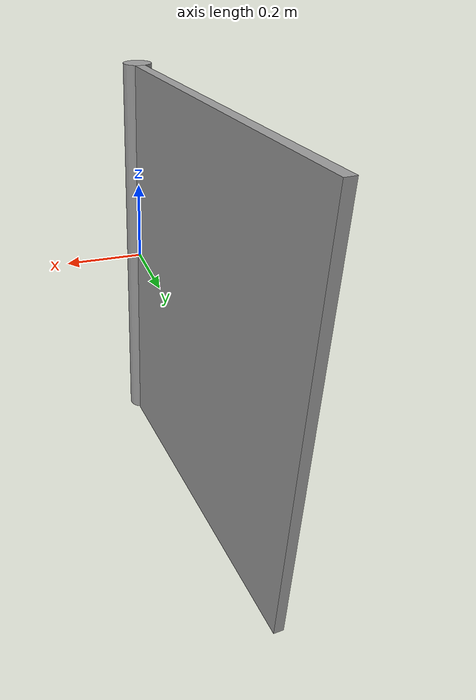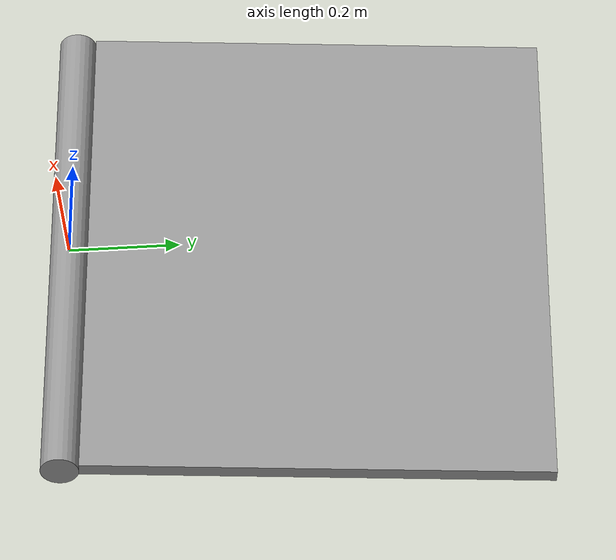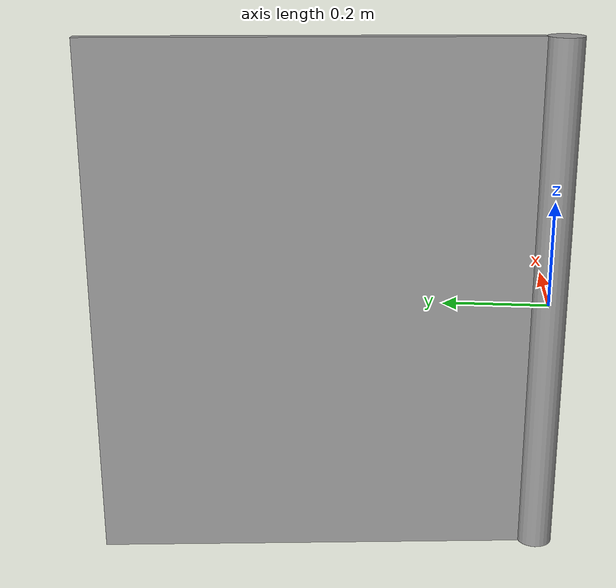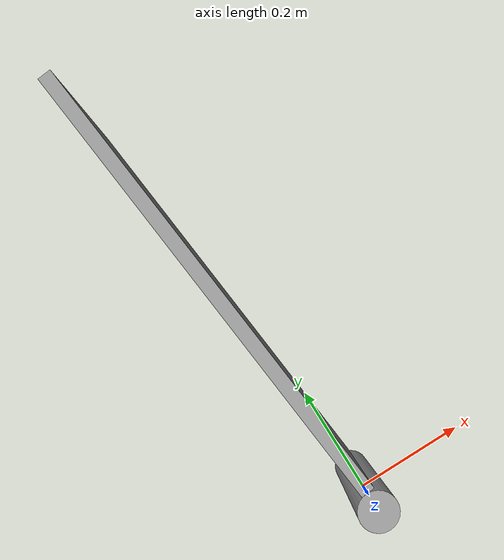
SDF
<?xml version='1.0'?>
<sdf version='1.6'>
  <model name='unit_cylinder'>
    <link name='link'>
      <inertial>
        <mass>0.00457498</mass>
        <inertia>
          <ixx>0.000382557</ixx>
          <ixy>0</ixy>
          <ixz>0</ixz>
          <iyy>0.000382557</iyy>
          <iyz>0</iyz>
          <izz>2.61629e-06</izz>
        </inertia>
        <pose frame=''>0 0 0 0 -0 0</pose>
      </inertial>
      <self_collide>0</self_collide>
      <enable_wind>0</enable_wind>
      <kinematic>0</kinematic>
      <pose frame=''>0 0 0 0 -0 0</pose>
      <visual name='visual'>
        <geometry>
          <cylinder>
            <radius>0.0338192</radius>
            <length>1</length>
          </cylinder>
        </geometry>
        <material>
          <script>
            <name>Gazebo/Grey</name>
            <uri>file://media/materials/scripts/gazebo.material</uri>
          </script>
          <emissive>0 0 0 1</emissive>
        </material>
        <pose frame=''>0 0 0 0 -0 0</pose>
        <transparency>0</transparency>
        <cast_shadows>1</cast_shadows>
      </visual>
      <collision name='collision'>
        <laser_retro>0</laser_retro>
        <max_contacts>10</max_contacts>
        <pose frame=''>0 0 0 0 -0 0</pose>
        <geometry>
          <cylinder>
            <radius>0.033819</radius>
            <length>1</length>
          </cylinder>
        </geometry>
        <surface>
          <friction>
            <ode>
              <mu>1</mu>
              <mu2>1</mu2>
              <fdir1>0 0 0</fdir1>
              <slip1>0</slip1>
              <slip2>0</slip2>
            </ode>
            <torsional>
              <coefficient>1</coefficient>
              <patch_radius>0</patch_radius>
              <surface_radius>0</surface_radius>
              <use_patch_radius>1</use_patch_radius>
              <ode>
                <slip>0</slip>
              </ode>
            </torsional>
          </friction>
          <bounce>
            <restitution_coefficient>0</restitution_coefficient>
            <threshold>1e+06</threshold>
          </bounce>
          <contact>
            <collide_without_contact>0</collide_without_contact>
            <collide_without_contact_bitmask>1</collide_without_contact_bitmask>
            <collide_bitmask>1</collide_bitmask>
            <ode>
              <soft_cfm>0</soft_cfm>
              <soft_erp>0.2</soft_erp>
              <kp>1e+13</kp>
              <kd>1</kd>
              <max_vel>0.01</max_vel>
              <min_depth>0</min_depth>
            </ode>
            <bullet>
              <split_impulse>1</split_impulse>
              <split_impulse_penetration_threshold>-0.01</split_impulse_penetration_threshold>
              <soft_cfm>0</soft_cfm>
              <soft_erp>0.2</soft_erp>
              <kp>1e+13</kp>
              <kd>1</kd>
            </bullet>
          </contact>
        </surface>
      </collision>
    </link>
    <link name='link_0'>
      <inertial>
        <mass>0.020107</mass>
        <inertia>
          <ixx>0.00282267</ixx>
          <ixy>0</ixy>
          <ixz>0</ixz>
          <iyy>0.00167657</iyy>
          <iyz>0</iyz>
          <izz>0.00114807</izz>
        </inertia>
        <pose frame=''>0 0 0 0 -0 0</pose>
      </inertial>
      <pose frame=''>-0.03872 0.445706 0 0 -0 0.098181</pose>
      <visual name='visual'>
        <pose frame=''>0 0 0 0 -0 0</pose>
        <geometry>
          <box>
            <size>0.024305 0.827398 1</size>
          </box>
        </geometry>
        <material>
          <lighting>1</lighting>
          <script>
            <uri>file://media/materials/scripts/gazebo.material</uri>
            <name>Gazebo/Grey</name>
          </script>
          <emissive>0 0 0 1</emissive>
        </material>
        <transparency>0</transparency>
        <cast_shadows>1</cast_shadows>
      </visual>
      <collision name='collision'>
        <laser_retro>0</laser_retro>
        <max_contacts>10</max_contacts>
        <pose frame=''>0 0 0 0 -0 0</pose>
        <geometry>
          <box>
            <size>0.024305 0.827398 1</size>
          </box>
        </geometry>
        <surface>
          <friction>
            <ode>
              <mu>1</mu>
              <mu2>1</mu2>
              <fdir1>0 0 0</fdir1>
              <slip1>0</slip1>
              <slip2>0</slip2>
            </ode>
            <torsional>
              <coefficient>1</coefficient>
              <patch_radius>0</patch_radius>
              <surface_radius>0</surface_radius>
              <use_patch_radius>1</use_patch_radius>
              <ode>
                <slip>0</slip>
              </ode>
            </torsional>
          </friction>
          <bounce>
            <restitution_coefficient>0</restitution_coefficient>
            <threshold>1e+06</threshold>
          </bounce>
          <contact>
            <collide_without_contact>0</collide_without_contact>
            <collide_without_contact_bitmask>1</collide_without_contact_bitmask>
            <collide_bitmask>1</collide_bitmask>
            <ode>
              <soft_cfm>0</soft_cfm>
              <soft_erp>0.2</soft_erp>
              <kp>1e+13</kp>
              <kd>1</kd>
              <max_vel>0.01</max_vel>
              <min_depth>0</min_depth>
            </ode>
            <bullet>
              <split_impulse>1</split_impulse>
              <split_impulse_penetration_threshold>-0.01</split_impulse_penetration_threshold>
              <soft_cfm>0</soft_cfm>
              <soft_erp>0.2</soft_erp>
              <kp>1e+13</kp>
              <kd>1</kd>
            </bullet>
          </contact>
        </surface>
      </collision>
    </link>
    <joint name='link_JOINT_0' type='revolute'>
      <parent>link</parent>
      <child>link_0</child>
      <pose frame=''>0 0 0 0 -0 0</pose>
      <axis>
        <xyz>1 0 0</xyz>
        <use_parent_model_frame>0</use_parent_model_frame>
        <limit>
          <lower>-1.79769e+308</lower>
          <upper>1.79769e+308</upper>
          <effort>-1</effort>
          <velocity>-1</velocity>
        </limit>
        <dynamics>
          <spring_reference>0</spring_reference>
          <spring_stiffness>0</spring_stiffness>
          <damping>0</damping>
        </dynamics>
      </axis>
      <physics>
        <ode>
          <limit>
            <cfm>0</cfm>
            <erp>0.2</erp>
          </limit>
          <suspension>
            <cfm>0</cfm>
            <erp>0.2</erp>
          </suspension>
        </ode>
      </physics>
    </joint>
    <static>0</static>
    <allow_auto_disable>1</allow_auto_disable>
  </model>
</sdf>
